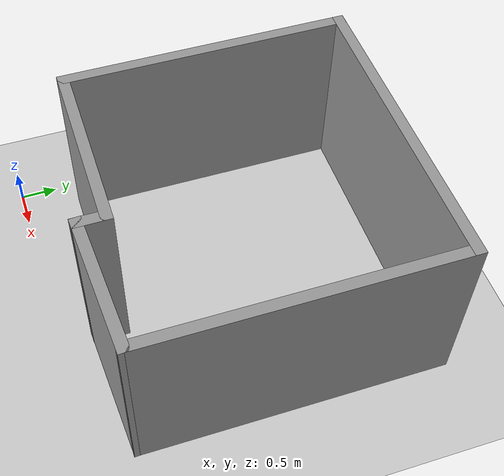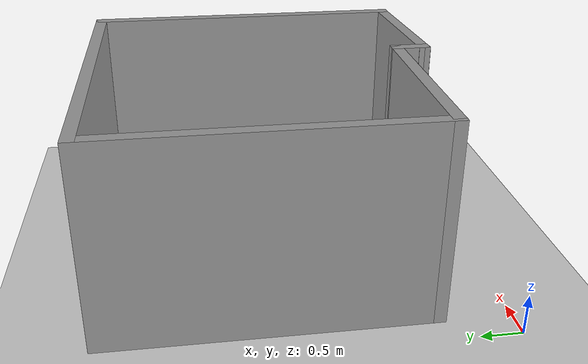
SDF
<sdf version="1.7">
 <world name="default">
  <light name="sun" type="directional">
   <pose>0 0 10 0 -0 0</pose>
   <diffuse>0.8 0.8 0.8 1</diffuse>
   <specular>0.2 0.2 0.2 1</specular>
   <attenuation>
    <range>1000</range>
    <constant>0.9</constant>
    <linear>0.01</linear>
    <quadratic>0.001</quadratic>
   </attenuation>
   <direction>-0.5 0.1 -0.9</direction>
   <spot><inner_angle>0</inner_angle><outer_angle>0</outer_angle><falloff>0</falloff></spot>
  </light>
  <model name="ground_plane">
   <static>1</static>
   <link name="link">
    <collision name="collision">
     <geometry><plane><normal>0 0 1</normal><size>100 100</size></plane></geometry>
     <surface><friction><ode><mu>100</mu><mu2>50</mu2></ode></friction></surface>
    </collision>
    <visual name="visual">
     <cast_shadows>0</cast_shadows>
     <geometry><plane><normal>0 0 1</normal><size>100 100</size></plane></geometry>
     <material>
      <script><uri>file://media/materials/scripts/gazebo.material</uri><name>Gazebo/Grey</name></script>
     </material>
    </visual>
   </link>
  </model>
  <gravity>0 0 -9.8</gravity>
  <magnetic_field>6e-06 2.3e-05 -4.2e-05</magnetic_field>
  <atmosphere type="adiabatic"/>
  <physics type="ode">
   <max_step_size>0.001</max_step_size>
   <real_time_factor>1</real_time_factor>
   <real_time_update_rate>1000</real_time_update_rate>
  </physics>
  <scene><ambient>0.4 0.4 0.4 1</ambient><background>0.7 0.7 0.7 1</background><shadows>1</shadows></scene>
  <spherical_coordinates>
   <surface_model>EARTH_WGS84</surface_model>
   <latitude_deg>0</latitude_deg>
   <longitude_deg>0</longitude_deg>
   <elevation>0</elevation>
   <heading_deg>0</heading_deg>
  </spherical_coordinates>
  <model name="SecondWorld">
   <pose>2.27903 2.39534 0 0 -0 0</pose>
   <link name="Wall_3">
    <collision name="Wall_3_Collision">
     <geometry><box><size>2.5 0.15 2.5</size></box></geometry>
     <pose>0 0 1.25 0 -0 0</pose>
    </collision>
    <visual name="Wall_3_Visual">
     <pose>0 0 1.25 0 -0 0</pose>
     <geometry><box><size>2.5 0.15 2.5</size></box></geometry>
     <material>
      <script><uri>file://media/materials/scripts/gazebo.material</uri><name>Gazebo/Grey</name></script>
      <ambient>1 1 1 1</ambient>
     </material>
     <meta><layer>0</layer></meta>
    </visual>
    <pose>-0.725126 -1.52967 0 0 -0 0</pose>
   </link>
   <link name="Wall_4">
    <collision name="Wall_4_Collision">
     <geometry><box><size>0.5 0.15 2.5</size></box></geometry>
     <pose>0 0 1.25 0 -0 0</pose>
    </collision>
    <visual name="Wall_4_Visual">
     <pose>0 0 1.25 0 -0 0</pose>
     <geometry><box><size>0.5 0.15 2.5</size></box></geometry>
     <material>
      <script><uri>file://media/materials/scripts/gazebo.material</uri><name>Gazebo/Grey</name></script>
      <ambient>1 1 1 1</ambient>
     </material>
     <meta><layer>0</layer></meta>
    </visual>
    <pose>0.449874 -1.70467 0 0 -0 -1.5708</pose>
   </link>
   <link name="Wall_6">
    <collision name="Wall_6_Collision">
     <geometry><box><size>4 0.15 2.5</size></box></geometry>
     <pose>0 0 1.25 0 -0 0</pose>
    </collision>
    <visual name="Wall_6_Visual">
     <pose>0 0 1.25 0 -0 0</pose>
     <geometry><box><size>4 0.15 2.5</size></box></geometry>
     <material>
      <script><uri>file://media/materials/scripts/gazebo.material</uri><name>Gazebo/Grey</name></script>
      <ambient>1 1 1 1</ambient>
     </material>
     <meta><layer>0</layer></meta>
    </visual>
    <pose>-1.90013 0.395335 0 0 -0 1.5708</pose>
   </link>
   <link name="Wall_7">
    <collision name="Wall_7_Collision">
     <geometry><box><size>4.25 0.15 2.5</size></box></geometry>
     <pose>0 0 1.25 0 -0 0</pose>
    </collision>
    <visual name="Wall_7_Visual">
     <pose>0 0 1.25 0 -0 0</pose>
     <geometry><box><size>4.25 0.15 2.5</size></box></geometry>
     <material>
      <script><uri>file://media/materials/scripts/gazebo.material</uri><name>Gazebo/Grey</name></script>
      <ambient>1 1 1 1</ambient>
     </material>
     <meta><layer>0</layer></meta>
    </visual>
    <pose>0.149874 2.32033 0 0 -0 0</pose>
   </link>
   <link name="Wall_8">
    <collision name="Wall_8_Collision">
     <geometry><box><size>4.25 0.15 2.5</size></box></geometry>
     <pose>0 0 1.25 0 -0 0</pose>
    </collision>
    <visual name="Wall_8_Visual">
     <pose>0 0 1.25 0 -0 0</pose>
     <geometry><box><size>4.25 0.15 2.5</size></box></geometry>
     <material>
      <script><uri>file://media/materials/scripts/gazebo.material</uri><name>Gazebo/Grey</name></script>
      <ambient>1 1 1 1</ambient>
     </material>
     <meta><layer>0</layer></meta>
    </visual>
    <pose>2.19987 0.270335 0 0 -0 -1.5708</pose>
   </link>
   <link name="Wall_9">
    <collision name="Wall_9_Collision">
     <geometry><box><size>1.90285 0.15 2.5</size></box></geometry>
     <pose>0 0 1.25 0 -0 0</pose>
    </collision>
    <visual name="Wall_9_Visual">
     <pose>0 0 1.25 0 -0 0</pose>
     <geometry><box><size>1.90285 0.15 2.5</size></box></geometry>
     <material>
      <script><uri>file://media/materials/scripts/gazebo.material</uri><name>Gazebo/Grey</name></script>
      <ambient>1 1 1 1</ambient>
     </material>
     <meta><layer>0</layer></meta>
    </visual>
    <pose>1.32487 -1.82967 0 0 -0 -3.08451</pose>
   </link>
   <static>1</static>
  </model>
 </world>
</sdf>
